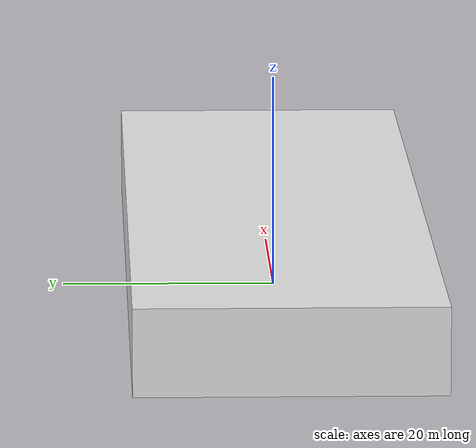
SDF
<?xml version='1.0'?>
<sdf version='1.6'>
  <model name='stadium_box'>
    <link name='link_0'>
      <pose frame=''>0 0 0 0 -0 0</pose>

      <visual name='visual'>
        <pose frame=''>0 0 4 0 -0 0</pose>
        <geometry>
          <box>
            <size>92 28 8</size>
          </box>
        </geometry>
        <material>
          <lighting>1</lighting>
          <script>
            <uri>file://media/materials/scripts/gazebo.material</uri>
            <name>Gazebo/White</name>
          </script>
          <shader type='pixel'>
            <normal_map>__default__</normal_map>
          </shader>
          <ambient>0.3 0.3 0.3 1</ambient>
          <diffuse>0.7 0.7 0.7 1</diffuse>
          <specular>0.01 0.01 0.01 1</specular>
          <emissive>0 0 0 1</emissive>
        </material>
        <transparency>0</transparency>
        <cast_shadows>1</cast_shadows>
      </visual>
      <collision name='collision'>
        <laser_retro>0</laser_retro>
        <max_contacts>10</max_contacts>
        <pose frame=''>0 0 4 0 -0 0</pose>
        <geometry>
          <box>
            <size>92 28 8</size>
          </box>
        </geometry>
      </collision>
    </link>
    <static>1</static>
  </model>
</sdf>
